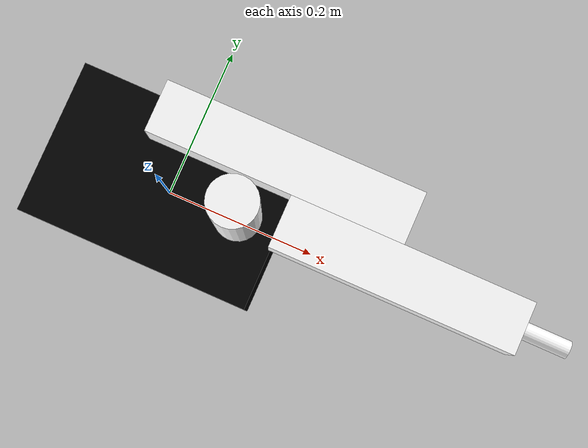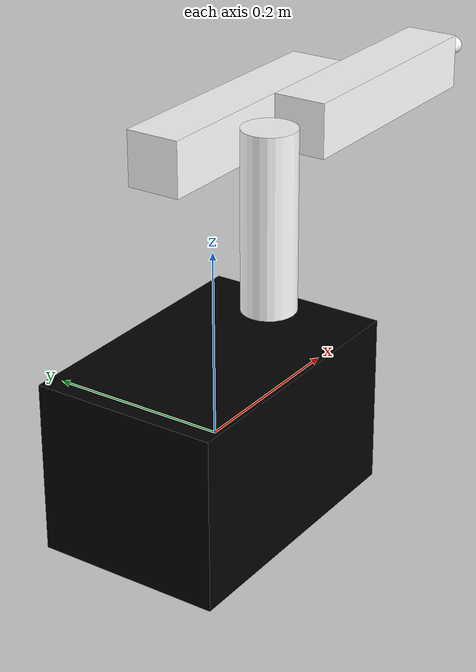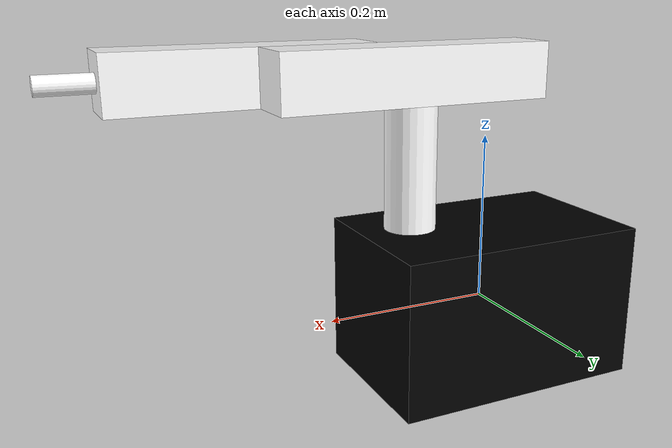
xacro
<?xml version="1.0"?>
<robot name="arm5dof" xmlns:xacro="http://ros.org/wiki/xacro">

  <xacro:property name="phi" value="3.1415" />
	<xacro:property name="chassis_length" value="0.4" />
	<xacro:property name="chassis_width" value="0.2" />
	<xacro:property name="chassis_height" value="0.05" />
	<xacro:property name="wheel_radius" value="0.075" />
	<xacro:property name="wheel_length" value="0.02" />

  <material name="blue">
    <color rgba="0 0 0.8 1"/>
  </material>
  <material name="black">
    <color rgba="0 0 0 1"/>
  </material>
  <material name="white">
    <color rgba="1 1 1 1"/>
  </material>

  <link name="base_link">
    <visual>
      <geometry>
        <box size="0.305 0.200 0.185"/>
      </geometry>
      <material name="black"/>
    </visual>
    <collision>
      <geometry>
        <box size="0.305 0.200 0.185"/>
      </geometry>
    </collision>
    <inertial>
      <mass value="100"/>
      <inertia ixx="1.0" ixy="0.0" ixz="0.0" iyy="1.0" iyz="0.0" izz="1.0"/>
    </inertial>
  </link>

  <link name="L1">
    <visual>
      <geometry>
        <cylinder length="0.200" radius="0.030"/>
      </geometry>
      <origin rpy="0 0 0" xyz="0 0 0.100"/>
      <material name="white"/>
    </visual>
    <collision>
      <geometry>
        <cylinder length="0.200" radius="0.030"/>
      </geometry>
      <origin rpy="0 0 0" xyz="0 0 0.100"/>
    </collision>
    <inertial>
      <mass value="0.05"/>
      <inertia ixx="1.0" ixy="0.0" ixz="0.0" iyy="1.0" iyz="0.0" izz="1.0"/>
    </inertial>
  </link>
   <joint name="J1" type="continuous">
    <axis xyz="0 0 1"/>
    <dynamics damping="0.7"/>
    <parent link="base_link"/>
    <child link="L1"/>
    <origin xyz="0.100 0 0.100"/>
  </joint>
    <transmission name="J1_tran">
    <type>transmission_interface/SimpleTransmission</type>
    <joint name="J1">
      <hardwareInterface>hardware_interface/EffortJointInterface</hardwareInterface>
    </joint>
    <actuator name="J1_motor">
      <hardwareInterface>hardware_interface/EffortJointInterface</hardwareInterface>
      <mechanicalReduction>1</mechanicalReduction>
    </actuator>
  </transmission>

<link name="L2">
    <visual>
      <geometry>
        <box size="0.300 0.060 0.060"/>
      </geometry>
      <origin rpy="0 0 0" xyz="0.035 0 0"/>
      <material name="white"/>
    </visual>
    <collision>
      <geometry>
        <box size="0.300 0.060 0.060"/>
      </geometry>
      <origin rpy="0 0 0" xyz="0.035 0 0"/>
    </collision>
    <inertial>
      <mass value="0.05"/>
      <inertia ixx="1.0" ixy="0.0" ixz="0.0" iyy="1.0" iyz="0.0" izz="1.0"/>
    </inertial>
  </link>
   <joint name="J2" type="continuous">
    <axis xyz="0 1 0"/>
    <dynamics damping="0.7"/>
    <parent link="L1"/>
    <child link="L2"/>
    <origin xyz="0 0.060 0.185"/>
  </joint>
    <transmission name="J2_tran">
    <type>transmission_interface/SimpleTransmission</type>
    <joint name="J2">
      <hardwareInterface>hardware_interface/EffortJointInterface</hardwareInterface>
    </joint>
    <actuator name="J2_motor">
      <hardwareInterface>hardware_interface/EffortJointInterface</hardwareInterface>
      <mechanicalReduction>1</mechanicalReduction>
    </actuator>
  </transmission>
<link name="L3">
    <visual>
      <geometry>
        <box size="0.280 0.060 0.060"/>
      </geometry>
      <origin rpy="0 0 0" xyz="0.030 0 0"/>
      <material name="white"/>
    </visual>
    <collision>
      <geometry>
        <box size="0.280 0.060 0.060"/>
      </geometry>
      <origin rpy="0 0 0" xyz="0.030 0 0"/>
    </collision>
    <inertial>
      <mass value="0.05"/>
      <inertia ixx="1.0" ixy="0.0" ixz="0.0" iyy="1.0" iyz="0.0" izz="1.0"/>
    </inertial>
  </link>
   <joint name="J3" type="continuous">
    <axis xyz="0 1 0"/>
    <dynamics damping="0.7"/>
    <parent link="L2"/>
    <child link="L3"/>
    <origin xyz="0.165 -0.060 0"/>
  </joint>
    <transmission name="J3_tran">
    <type>transmission_interface/SimpleTransmission</type>
    <joint name="J3">
      <hardwareInterface>hardware_interface/EffortJointInterface</hardwareInterface>
    </joint>
    <actuator name="J3_motor">
      <hardwareInterface>hardware_interface/EffortJointInterface</hardwareInterface>
      <mechanicalReduction>1</mechanicalReduction>
    </actuator>
  </transmission>

  <link name="L4">
    <visual>
      <geometry>
        <cylinder length="0.110" radius="0.010"/>
      </geometry>
      <origin rpy="0 1.57075 0 " xyz="0.020 0 0"/>
      <material name="white"/>
    </visual>
    <collision>
      <geometry>
        <cylinder length="0.110" radius="0.010"/>
      </geometry>
      <origin rpy="0 1.57075 0 " xyz="0.020 0 0"/>
    </collision>
    <inertial>
      <mass value="0.01"/>
      <inertia ixx="1.0" ixy="0.0" ixz="0.0" iyy="1.0" iyz="0.0" izz="1.0"/>
    </inertial>
  </link>
  <joint name="J4" type="continuous">
    <axis xyz="0 1 0"/>
    <dynamics damping="0.7"/>
    <parent link="L3"/>
    <child link="L4"/>
    <origin rpy="0 0 0" xyz="0.150 0 0"/>
  </joint>
    <transmission name="J4_tran">
    <type>transmission_interface/SimpleTransmission</type>
    <joint name="J4">
      <hardwareInterface>hardware_interface/EffortJointInterface</hardwareInterface>
    </joint>
    <actuator name="J4_motor">
      <hardwareInterface>hardware_interface/EffortJointInterface</hardwareInterface>
      <mechanicalReduction>1</mechanicalReduction>
    </actuator>
  </transmission>
  <gazebo>
    <plugin name="gazebo_ros_control" filename="libgazebo_ros_control.so">
      <robotNamespace>/arm5dof</robotNamespace>
      <robotSimType>gazebo_ros_control/DefaultRobotHWSim</robotSimType>
      <legacyModeNS>true</legacyModeNS>
    </plugin>
  </gazebo>

</robot>
